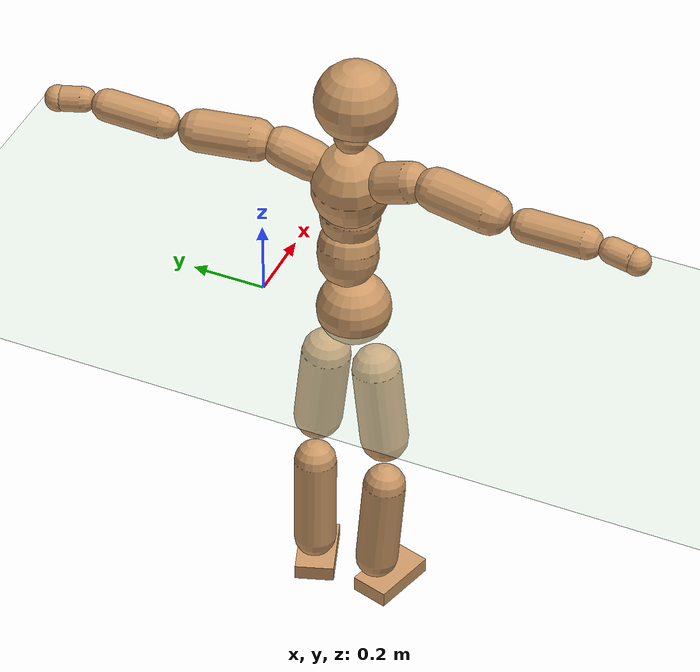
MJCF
<mujoco model="humanoid">
  <compiler coordinate="local"/>
  <default>
    <joint damping="0.0" armature="0.01" stiffness="0.0" limited="true"/>
    <geom conaffinity="1" condim="3" contype="7" margin="0.001" rgba="0.8 0.6 .4 1"/>
  </default>
  <asset>
    <texture type="skybox" builtin="gradient" rgb1=".4 .5 .6" rgb2="0 0 0" width="100" height="100"/>
    <texture builtin="flat" height="1278" mark="cross" markrgb="1 1 1" name="texgeom" random="0.01" rgb1="0.8 0.6 0.4" rgb2="0.8 0.6 0.4" type="cube" width="127"/>
    <texture builtin="checker" height="100" name="texplane" rgb1="0 0 0" rgb2="0.8 0.8 0.8" type="2d" width="100"/>
    <material name="MatPlane" reflectance="0.5" shininess="1" specular="1" texrepeat="60 60" texture="texplane"/>
    <material name="geom" texture="texgeom" texuniform="true"/>
  </asset>
  <worldbody>
    <light cutoff="100" diffuse="1 1 1" dir="-0 0 -1.3" directional="true" exponent="1" pos="0 0 1.3" specular=".1 .1 .1"/>
    <geom conaffinity="1" condim="3" name="floor" pos="0 0 0" rgba="0.8 0.9 0.8 1" size="100 100 .2" type="plane" material="MatPlane"/>
    <body name="Pelvis" pos="-0.0021 -0.2583 0.0258">
      <freejoint name="Pelvis"/>
      <geom type="sphere" contype="1" conaffinity="1" density="500" size="0.0987" pos="0.0000 0.0000 0.0000" name="Pelvis"/>
      <body name="L_Hip" pos="-0.0204 0.061 -0.0849">
        <joint name="L_Hip_x" type="hinge" pos="0 0 0" axis="1 0 0" stiffness="800" damping="80" armature="0.02" range="-180.0000 180.0000"/>
        <joint name="L_Hip_y" type="hinge" pos="0 0 0" axis="0 1 0" stiffness="800" damping="80" armature="0.02" range="-180.0000 180.0000"/>
        <joint name="L_Hip_z" type="hinge" pos="0 0 0" axis="0 0 1" stiffness="800" damping="80" armature="0.02" range="-180.0000 180.0000"/>
        <geom type="capsule" contype="1" conaffinity="1" density="500" fromto="0.0015 0.0089 -0.0773 0.0061 0.0355 -0.3092" size="0.0651" name="L_Hip"/>
        <body name="L_Knee" pos="0.0076 0.0443 -0.3864">
          <joint name="L_Knee_x" type="hinge" pos="0 0 0" axis="1 0 0" stiffness="800" damping="80" armature="0.02" range="-180.0000 180.0000"/>
          <joint name="L_Knee_y" type="hinge" pos="0 0 0" axis="0 1 0" stiffness="800" damping="80" armature="0.02" range="-180.0000 180.0000"/>
          <joint name="L_Knee_z" type="hinge" pos="0 0 0" axis="0 0 1" stiffness="800" damping="80" armature="0.02" range="-180.0000 180.0000"/>
          <geom type="capsule" contype="1" conaffinity="1" density="500" fromto="-0.0077 -0.0029 -0.0837 -0.0308 -0.0114 -0.3348" size="0.0572" name="L_Knee"/>
          <body name="L_Ankle" pos="-0.0385 -0.0143 -0.4185">
            <joint name="L_Ankle_x" type="hinge" pos="0 0 0" axis="1 0 0" stiffness="800" damping="80" armature="0.02" range="-180.0000 180.0000"/>
            <joint name="L_Ankle_y" type="hinge" pos="0 0 0" axis="0 1 0" stiffness="800" damping="80" armature="0.02" range="-180.0000 180.0000"/>
            <joint name="L_Ankle_z" type="hinge" pos="0 0 0" axis="0 0 1" stiffness="800" damping="80" armature="0.02" range="-180.0000 180.0000"/>
            <geom type="box" contype="1" conaffinity="1" density="500" pos="0.0606 0.0207 -0.0301" size="0.0885 0.0528 0.0214" quat="0.9865 0.0000 0.0000 0.1640" name="L_Ankle"/>
            <body name="L_Toe" pos="0.1213 0.0415 -0.0602">
              <joint name="L_Toe_x" type="hinge" pos="0 0 0" axis="1 0 0" stiffness="500" damping="50" armature="0.02" range="-180.0000 180.0000"/>
              <joint name="L_Toe_y" type="hinge" pos="0 0 0" axis="0 1 0" stiffness="500" damping="50" armature="0.02" range="-180.0000 180.0000"/>
              <joint name="L_Toe_z" type="hinge" pos="0 0 0" axis="0 0 1" stiffness="500" damping="50" armature="0.02" range="-180.0000 180.0000"/>
              <geom type="box" contype="1" conaffinity="1" density="500" pos="0.0000 0.0000 0.0298" size="0.0011 0.0025 0.0011" quat="0.9857 0.0000 0.0000 0.1687" name="L_Toe"/>
            </body>
          </body>
        </body>
      </body>
      <body name="R_Hip" pos="-0.0171 -0.0627 -0.0922">
        <joint name="R_Hip_x" type="hinge" pos="0 0 0" axis="1 0 0" stiffness="800" damping="80" armature="0.02" range="-180.0000 180.0000"/>
        <joint name="R_Hip_y" type="hinge" pos="0 0 0" axis="0 1 0" stiffness="800" damping="80" armature="0.02" range="-180.0000 180.0000"/>
        <joint name="R_Hip_z" type="hinge" pos="0 0 0" axis="0 0 1" stiffness="800" damping="80" armature="0.02" range="-180.0000 180.0000"/>
        <geom type="capsule" contype="1" conaffinity="1" density="500" fromto="-0.0010 -0.0087 -0.0767 -0.0039 -0.0349 -0.3069" size="0.0645" name="R_Hip"/>
        <body name="R_Knee" pos="-0.0049 -0.0436 -0.3837">
          <joint name="R_Knee_x" type="hinge" pos="0 0 0" axis="1 0 0" stiffness="800" damping="80" armature="0.02" range="-180.0000 180.0000"/>
          <joint name="R_Knee_y" type="hinge" pos="0 0 0" axis="0 1 0" stiffness="800" damping="80" armature="0.02" range="-180.0000 180.0000"/>
          <joint name="R_Knee_z" type="hinge" pos="0 0 0" axis="0 0 1" stiffness="800" damping="80" armature="0.02" range="-180.0000 180.0000"/>
          <geom type="capsule" contype="1" conaffinity="1" density="500" fromto="-0.0072 0.0038 -0.0825 -0.0287 0.0151 -0.3299" size="0.0572" name="R_Knee"/>
          <body name="R_Ankle" pos="-0.0359 0.0188 -0.4124">
            <joint name="R_Ankle_x" type="hinge" pos="0 0 0" axis="1 0 0" stiffness="800" damping="80" armature="0.02" range="-180.0000 180.0000"/>
            <joint name="R_Ankle_y" type="hinge" pos="0 0 0" axis="0 1 0" stiffness="800" damping="80" armature="0.02" range="-180.0000 180.0000"/>
            <joint name="R_Ankle_z" type="hinge" pos="0 0 0" axis="0 0 1" stiffness="800" damping="80" armature="0.02" range="-180.0000 180.0000"/>
            <geom type="box" contype="1" conaffinity="1" density="500" pos="0.0648 -0.0181 -0.0307" size="0.0899 0.052 0.0217" quat="0.9908 0.0000 0.0000 -0.1356" name="R_Ankle"/>
            <body name="R_Toe" pos="0.1296 -0.0361 -0.0613">
              <joint name="R_Toe_x" type="hinge" pos="0 0 0" axis="1 0 0" stiffness="500" damping="50" armature="0.02" range="-180.0000 180.0000"/>
              <joint name="R_Toe_y" type="hinge" pos="0 0 0" axis="0 1 0" stiffness="500" damping="50" armature="0.02" range="-180.0000 180.0000"/>
              <joint name="R_Toe_z" type="hinge" pos="0 0 0" axis="0 0 1" stiffness="500" damping="50" armature="0.02" range="-180.0000 180.0000"/>
              <geom type="box" contype="1" conaffinity="1" density="500" pos="0.0000 0.0000 0.0311" size="0.0011 0.0025 0.0011" quat="0.9920 0.0000 0.0000 -0.1266" name="R_Toe"/>
            </body>
          </body>
        </body>
      </body>
      <body name="Torso" pos="-0.0382 0.0041 0.1273">
        <joint name="Torso_x" type="hinge" pos="0 0 0" axis="1 0 0" stiffness="1000" damping="100" armature="0.02" range="-180.0000 180.0000"/>
        <joint name="Torso_y" type="hinge" pos="0 0 0" axis="0 1 0" stiffness="1000" damping="100" armature="0.02" range="-180.0000 180.0000"/>
        <joint name="Torso_z" type="hinge" pos="0 0 0" axis="0 0 1" stiffness="1000" damping="100" armature="0.02" range="-180.0000 180.0000"/>
        <geom type="capsule" contype="1" conaffinity="1" density="500" fromto="0.0179 0.0029 0.0894 0.0119 0.0020 0.0596" size="0.0798" name="Torso"/>
        <body name="Spine" pos="0.0299 0.0049 0.149">
          <joint name="Spine_x" type="hinge" pos="0 0 0" axis="1 0 0" stiffness="1000" damping="100" armature="0.02" range="-180.0000 180.0000"/>
          <joint name="Spine_y" type="hinge" pos="0 0 0" axis="0 1 0" stiffness="1000" damping="100" armature="0.02" range="-180.0000 180.0000"/>
          <joint name="Spine_z" type="hinge" pos="0 0 0" axis="0 0 1" stiffness="1000" damping="100" armature="0.02" range="-180.0000 180.0000"/>
          <geom type="capsule" contype="1" conaffinity="1" density="500" fromto="0.0022 -0.0013 0.0365 0.0015 -0.0009 0.0243" size="0.0784" name="Spine"/>
          <body name="Chest" pos="0.0037 -0.0022 0.0608">
            <joint name="Chest_x" type="hinge" pos="0 0 0" axis="1 0 0" stiffness="1000" damping="100" armature="0.02" range="-180.0000 180.0000"/>
            <joint name="Chest_y" type="hinge" pos="0 0 0" axis="0 1 0" stiffness="1000" damping="100" armature="0.02" range="-180.0000 180.0000"/>
            <joint name="Chest_z" type="hinge" pos="0 0 0" axis="0 0 1" stiffness="1000" damping="100" armature="0.02" range="-180.0000 180.0000"/>
            <geom type="capsule" contype="1" conaffinity="1" density="500" fromto="-0.0152 -0.0050 0.0899 -0.0101 -0.0034 0.0600" size="0.1017" name="Chest"/>
            <body name="Neck" pos="-0.0341 -0.0133 0.2196">
              <joint name="Neck_x" type="hinge" pos="0 0 0" axis="1 0 0" stiffness="500" damping="50" armature="0.02" range="-180.0000 180.0000"/>
              <joint name="Neck_y" type="hinge" pos="0 0 0" axis="0 1 0" stiffness="500" damping="50" armature="0.02" range="-180.0000 180.0000"/>
              <joint name="Neck_z" type="hinge" pos="0 0 0" axis="0 0 1" stiffness="500" damping="50" armature="0.02" range="-180.0000 180.0000"/>
              <geom type="capsule" contype="1" conaffinity="1" density="500" fromto="0.0107 0.0021 0.0191 0.0429 0.0083 0.0762" size="0.0456" name="Neck"/>
              <body name="Head" pos="0.0536 0.0104 0.0953">
                <joint name="Head_x" type="hinge" pos="0 0 0" axis="1 0 0" stiffness="500" damping="50" armature="0.02" range="-180.0000 180.0000"/>
                <joint name="Head_y" type="hinge" pos="0 0 0" axis="0 1 0" stiffness="500" damping="50" armature="0.02" range="-180.0000 180.0000"/>
                <joint name="Head_z" type="hinge" pos="0 0 0" axis="0 0 1" stiffness="500" damping="50" armature="0.02" range="-180.0000 180.0000"/>
                <geom type="sphere" contype="1" conaffinity="1" density="500" size="0.1061" pos="0.0000 0.0000 0.0000" name="Head"/>
              </body>
            </body>
            <body name="L_Thorax" pos="-0.0177 0.0721 0.116">
              <joint name="L_Thorax_x" type="hinge" pos="0 0 0" axis="1 0 0" stiffness="500" damping="50" armature="0.02" range="-180.0000 180.0000"/>
              <joint name="L_Thorax_y" type="hinge" pos="0 0 0" axis="0 1 0" stiffness="500" damping="50" armature="0.02" range="-180.0000 180.0000"/>
              <joint name="L_Thorax_z" type="hinge" pos="0 0 0" axis="0 0 1" stiffness="500" damping="50" armature="0.02" range="-180.0000 180.0000"/>
              <geom type="capsule" contype="1" conaffinity="1" density="500" fromto="-0.0038 0.0246 0.0092 -0.0152 0.0984 0.0366" size="0.0534" name="L_Thorax"/>
              <body name="L_Shoulder" pos="-0.019 0.123 0.0458">
                <joint name="L_Shoulder_x" type="hinge" pos="0 0 0" axis="1 0 0" stiffness="500" damping="50" armature="0.02" range="-720.0000 720.0000"/>
                <joint name="L_Shoulder_y" type="hinge" pos="0 0 0" axis="0 1 0" stiffness="500" damping="50" armature="0.02" range="-720.0000 720.0000"/>
                <joint name="L_Shoulder_z" type="hinge" pos="0 0 0" axis="0 0 1" stiffness="500" damping="50" armature="0.02" range="-720.0000 720.0000"/>
                <geom type="capsule" contype="1" conaffinity="1" density="500" fromto="-0.0044 0.0491 -0.0031 -0.0174 0.1964 -0.0123" size="0.0561" name="L_Shoulder"/>
                <body name="L_Elbow" pos="-0.0218 0.2455 -0.0154">
                  <joint name="L_Elbow_x" type="hinge" pos="0 0 0" axis="1 0 0" stiffness="500" damping="50" armature="0.02" range="-720.0000 720.0000"/>
                  <joint name="L_Elbow_y" type="hinge" pos="0 0 0" axis="0 1 0" stiffness="500" damping="50" armature="0.02" range="-720.0000 720.0000"/>
                  <joint name="L_Elbow_z" type="hinge" pos="0 0 0" axis="0 0 1" stiffness="500" damping="50" armature="0.02" range="-720.0000 720.0000"/>
                  <geom type="capsule" contype="1" conaffinity="1" density="500" fromto="-0.0013 0.0510 0.0025 -0.0051 0.2041 0.0101" size="0.0431" name="L_Elbow"/>
                  <body name="L_Wrist" pos="-0.0064 0.2551 0.0126">
                    <joint name="L_Wrist_x" type="hinge" pos="0 0 0" axis="1 0 0" stiffness="300" damping="30" armature="0.02" range="-180.0000 180.0000"/>
                    <joint name="L_Wrist_y" type="hinge" pos="0 0 0" axis="0 1 0" stiffness="300" damping="30" armature="0.02" range="-180.0000 180.0000"/>
                    <joint name="L_Wrist_z" type="hinge" pos="0 0 0" axis="0 0 1" stiffness="300" damping="30" armature="0.02" range="-180.0000 180.0000"/>
                    <geom type="capsule" contype="1" conaffinity="1" density="500" fromto="-0.0030 0.0168 -0.0021 -0.0119 0.0671 -0.0085" size="0.0334" name="L_Wrist"/>
                    <body name="L_Hand" pos="-0.0149 0.0838 -0.0106">
                      <joint name="L_Hand_x" type="hinge" pos="0 0 0" axis="1 0 0" stiffness="300" damping="30" armature="0.02" range="-180.0000 180.0000"/>
                      <joint name="L_Hand_y" type="hinge" pos="0 0 0" axis="0 1 0" stiffness="300" damping="30" armature="0.02" range="-180.0000 180.0000"/>
                      <joint name="L_Hand_z" type="hinge" pos="0 0 0" axis="0 0 1" stiffness="300" damping="30" armature="0.02" range="-180.0000 180.0000"/>
                      <geom type="sphere" contype="1" conaffinity="1" density="500" size="0.0346" pos="0.0000 0.0000 0.0000" name="L_Hand"/>
                    </body>
                  </body>
                </body>
              </body>
            </body>
            <body name="R_Thorax" pos="-0.0242 -0.084 0.114">
              <joint name="R_Thorax_x" type="hinge" pos="0 0 0" axis="1 0 0" stiffness="500" damping="50" armature="0.02" range="-180.0000 180.0000"/>
              <joint name="R_Thorax_y" type="hinge" pos="0 0 0" axis="0 1 0" stiffness="500" damping="50" armature="0.02" range="-180.0000 180.0000"/>
              <joint name="R_Thorax_z" type="hinge" pos="0 0 0" axis="0 0 1" stiffness="500" damping="50" armature="0.02" range="-180.0000 180.0000"/>
              <geom type="capsule" contype="1" conaffinity="1" density="500" fromto="-0.0018 -0.0229 0.0095 -0.0071 -0.0915 0.0380" size="0.0535" name="R_Thorax"/>
              <body name="R_Shoulder" pos="-0.0088 -0.1143 0.0475">
                <joint name="R_Shoulder_x" type="hinge" pos="0 0 0" axis="1 0 0" stiffness="500" damping="50" armature="0.02" range="-720.0000 720.0000"/>
                <joint name="R_Shoulder_y" type="hinge" pos="0 0 0" axis="0 1 0" stiffness="500" damping="50" armature="0.02" range="-720.0000 720.0000"/>
                <joint name="R_Shoulder_z" type="hinge" pos="0 0 0" axis="0 0 1" stiffness="500" damping="50" armature="0.02" range="-720.0000 720.0000"/>
                <geom type="capsule" contype="1" conaffinity="1" density="500" fromto="-0.0063 -0.0501 -0.0029 -0.0254 -0.2004 -0.0116" size="0.0568" name="R_Shoulder"/>
                <body name="R_Elbow" pos="-0.0317 -0.2505 -0.0144">
                  <joint name="R_Elbow_x" type="hinge" pos="0 0 0" axis="1 0 0" stiffness="500" damping="50" armature="0.02" range="-720.0000 720.0000"/>
                  <joint name="R_Elbow_y" type="hinge" pos="0 0 0" axis="0 1 0" stiffness="500" damping="50" armature="0.02" range="-720.0000 720.0000"/>
                  <joint name="R_Elbow_z" type="hinge" pos="0 0 0" axis="0 0 1" stiffness="500" damping="50" armature="0.02" range="-720.0000 720.0000"/>
                  <geom type="capsule" contype="1" conaffinity="1" density="500" fromto="-0.0011 -0.0517 0.0010 -0.0042 -0.2069 0.0039" size="0.0436" name="R_Elbow"/>
                  <body name="R_Wrist" pos="-0.0053 -0.2586 0.0049">
                    <joint name="R_Wrist_x" type="hinge" pos="0 0 0" axis="1 0 0" stiffness="300" damping="30" armature="0.02" range="-180.0000 180.0000"/>
                    <joint name="R_Wrist_y" type="hinge" pos="0 0 0" axis="0 1 0" stiffness="300" damping="30" armature="0.02" range="-180.0000 180.0000"/>
                    <joint name="R_Wrist_z" type="hinge" pos="0 0 0" axis="0 0 1" stiffness="300" damping="30" armature="0.02" range="-180.0000 180.0000"/>
                    <geom type="capsule" contype="1" conaffinity="1" density="500" fromto="-0.0019 -0.0172 -0.0017 -0.0077 -0.0689 -0.0067" size="0.034" name="R_Wrist"/>
                    <body name="R_Hand" pos="-0.0097 -0.0861 -0.0084">
                      <joint name="R_Hand_x" type="hinge" pos="0 0 0" axis="1 0 0" stiffness="300" damping="30" armature="0.02" range="-180.0000 180.0000"/>
                      <joint name="R_Hand_y" type="hinge" pos="0 0 0" axis="0 1 0" stiffness="300" damping="30" armature="0.02" range="-180.0000 180.0000"/>
                      <joint name="R_Hand_z" type="hinge" pos="0 0 0" axis="0 0 1" stiffness="300" damping="30" armature="0.02" range="-180.0000 180.0000"/>
                      <geom type="sphere" contype="1" conaffinity="1" density="500" size="0.0351" pos="0.0000 0.0000 0.0000" name="R_Hand"/>
                    </body>
                  </body>
                </body>
              </body>
            </body>
          </body>
        </body>
      </body>
    </body>
  </worldbody>
  <actuator>
    <motor name="L_Hip_x" joint="L_Hip_x" gear="500"/>
    <motor name="L_Hip_y" joint="L_Hip_y" gear="500"/>
    <motor name="L_Hip_z" joint="L_Hip_z" gear="500"/>
    <motor name="L_Knee_x" joint="L_Knee_x" gear="500"/>
    <motor name="L_Knee_y" joint="L_Knee_y" gear="500"/>
    <motor name="L_Knee_z" joint="L_Knee_z" gear="500"/>
    <motor name="L_Ankle_x" joint="L_Ankle_x" gear="500"/>
    <motor name="L_Ankle_y" joint="L_Ankle_y" gear="500"/>
    <motor name="L_Ankle_z" joint="L_Ankle_z" gear="500"/>
    <motor name="L_Toe_x" joint="L_Toe_x" gear="500"/>
    <motor name="L_Toe_y" joint="L_Toe_y" gear="500"/>
    <motor name="L_Toe_z" joint="L_Toe_z" gear="500"/>
    <motor name="R_Hip_x" joint="R_Hip_x" gear="500"/>
    <motor name="R_Hip_y" joint="R_Hip_y" gear="500"/>
    <motor name="R_Hip_z" joint="R_Hip_z" gear="500"/>
    <motor name="R_Knee_x" joint="R_Knee_x" gear="500"/>
    <motor name="R_Knee_y" joint="R_Knee_y" gear="500"/>
    <motor name="R_Knee_z" joint="R_Knee_z" gear="500"/>
    <motor name="R_Ankle_x" joint="R_Ankle_x" gear="500"/>
    <motor name="R_Ankle_y" joint="R_Ankle_y" gear="500"/>
    <motor name="R_Ankle_z" joint="R_Ankle_z" gear="500"/>
    <motor name="R_Toe_x" joint="R_Toe_x" gear="500"/>
    <motor name="R_Toe_y" joint="R_Toe_y" gear="500"/>
    <motor name="R_Toe_z" joint="R_Toe_z" gear="500"/>
    <motor name="Torso_x" joint="Torso_x" gear="500"/>
    <motor name="Torso_y" joint="Torso_y" gear="500"/>
    <motor name="Torso_z" joint="Torso_z" gear="500"/>
    <motor name="Spine_x" joint="Spine_x" gear="500"/>
    <motor name="Spine_y" joint="Spine_y" gear="500"/>
    <motor name="Spine_z" joint="Spine_z" gear="500"/>
    <motor name="Chest_x" joint="Chest_x" gear="500"/>
    <motor name="Chest_y" joint="Chest_y" gear="500"/>
    <motor name="Chest_z" joint="Chest_z" gear="500"/>
    <motor name="Neck_x" joint="Neck_x" gear="500"/>
    <motor name="Neck_y" joint="Neck_y" gear="500"/>
    <motor name="Neck_z" joint="Neck_z" gear="500"/>
    <motor name="Head_x" joint="Head_x" gear="500"/>
    <motor name="Head_y" joint="Head_y" gear="500"/>
    <motor name="Head_z" joint="Head_z" gear="500"/>
    <motor name="L_Thorax_x" joint="L_Thorax_x" gear="500"/>
    <motor name="L_Thorax_y" joint="L_Thorax_y" gear="500"/>
    <motor name="L_Thorax_z" joint="L_Thorax_z" gear="500"/>
    <motor name="L_Shoulder_x" joint="L_Shoulder_x" gear="500"/>
    <motor name="L_Shoulder_y" joint="L_Shoulder_y" gear="500"/>
    <motor name="L_Shoulder_z" joint="L_Shoulder_z" gear="500"/>
    <motor name="L_Elbow_x" joint="L_Elbow_x" gear="500"/>
    <motor name="L_Elbow_y" joint="L_Elbow_y" gear="500"/>
    <motor name="L_Elbow_z" joint="L_Elbow_z" gear="500"/>
    <motor name="L_Wrist_x" joint="L_Wrist_x" gear="500"/>
    <motor name="L_Wrist_y" joint="L_Wrist_y" gear="500"/>
    <motor name="L_Wrist_z" joint="L_Wrist_z" gear="500"/>
    <motor name="L_Hand_x" joint="L_Hand_x" gear="500"/>
    <motor name="L_Hand_y" joint="L_Hand_y" gear="500"/>
    <motor name="L_Hand_z" joint="L_Hand_z" gear="500"/>
    <motor name="R_Thorax_x" joint="R_Thorax_x" gear="500"/>
    <motor name="R_Thorax_y" joint="R_Thorax_y" gear="500"/>
    <motor name="R_Thorax_z" joint="R_Thorax_z" gear="500"/>
    <motor name="R_Shoulder_x" joint="R_Shoulder_x" gear="500"/>
    <motor name="R_Shoulder_y" joint="R_Shoulder_y" gear="500"/>
    <motor name="R_Shoulder_z" joint="R_Shoulder_z" gear="500"/>
    <motor name="R_Elbow_x" joint="R_Elbow_x" gear="500"/>
    <motor name="R_Elbow_y" joint="R_Elbow_y" gear="500"/>
    <motor name="R_Elbow_z" joint="R_Elbow_z" gear="500"/>
    <motor name="R_Wrist_x" joint="R_Wrist_x" gear="500"/>
    <motor name="R_Wrist_y" joint="R_Wrist_y" gear="500"/>
    <motor name="R_Wrist_z" joint="R_Wrist_z" gear="500"/>
    <motor name="R_Hand_x" joint="R_Hand_x" gear="500"/>
    <motor name="R_Hand_y" joint="R_Hand_y" gear="500"/>
    <motor name="R_Hand_z" joint="R_Hand_z" gear="500"/>
  </actuator>
  <contact>
    <exclude body1="Torso" body2="Chest"/>
    <exclude body1="Head" body2="Chest"/>
    <exclude body1="R_Knee" body2="R_Toe"/>
    <exclude body1="R_Knee" body2="L_Ankle"/>
    <exclude body1="R_Knee" body2="L_Toe"/>
    <exclude body1="L_Knee" body2="L_Toe"/>
    <exclude body1="L_Knee" body2="R_Ankle"/>
    <exclude body1="L_Knee" body2="R_Toe"/>
    <exclude body1="L_Shoulder" body2="Chest"/>
    <exclude body1="R_Shoulder" body2="Chest"/>
  </contact>
  <sensor/>
  <size njmax="700" nconmax="700"/>
</mujoco>
